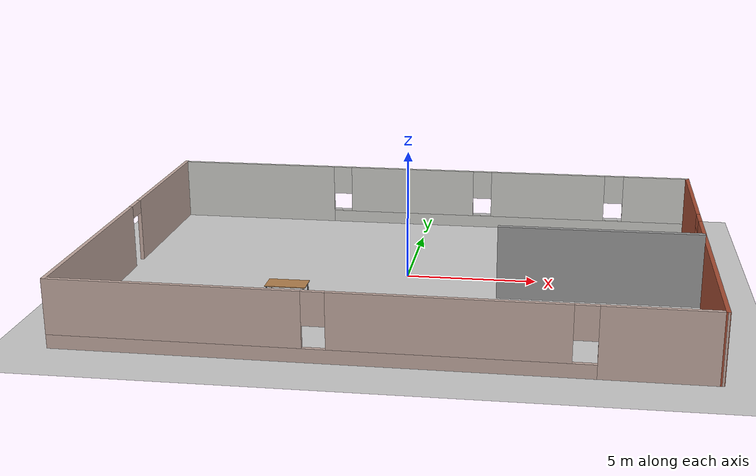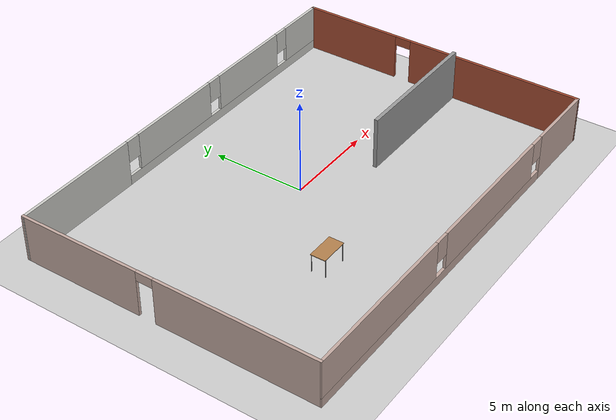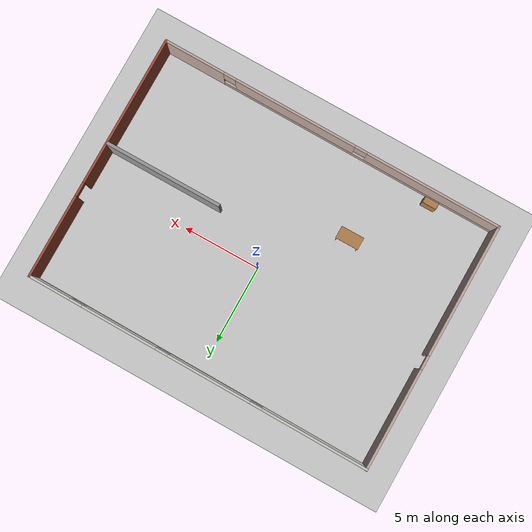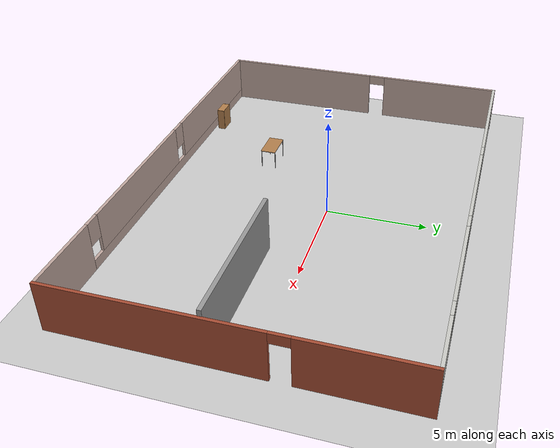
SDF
<sdf version="1.7">
 <world name="default">
  <light name="sun" type="directional">
   <pose>0 0 10 0 -0 0</pose>
   <diffuse>0.8 0.8 0.8 1</diffuse>
   <specular>0.2 0.2 0.2 1</specular>
   <attenuation>
    <range>1000</range>
    <constant>0.9</constant>
    <linear>0.01</linear>
    <quadratic>0.001</quadratic>
   </attenuation>
   <direction>-0.5 0.1 -0.9</direction>
   <spot><inner_angle>0</inner_angle><outer_angle>0</outer_angle><falloff>0</falloff></spot>
  </light>
  <model name="ground_plane">
   <static>1</static>
   <link name="link">
    <collision name="collision">
     <geometry><plane><normal>0 0 1</normal><size>100 100</size></plane></geometry>
     <surface>
      <contact><collide_bitmask>65535</collide_bitmask></contact>
      <friction><ode><mu>100</mu><mu2>50</mu2></ode></friction>
     </surface>
    </collision>
    <visual name="visual">
     <cast_shadows>0</cast_shadows>
     <geometry><plane><normal>0 0 1</normal><size>100 100</size></plane></geometry>
     <material>
      <script><uri>file://media/materials/scripts/gazebo.material</uri><name>Gazebo/Grey</name></script>
     </material>
    </visual>
   </link>
  </model>
  <gravity>0 0 -9.8</gravity>
  <magnetic_field>6e-06 2.3e-05 -4.2e-05</magnetic_field>
  <atmosphere type="adiabatic"/>
  <physics type="ode">
   <max_step_size>0.001</max_step_size>
   <real_time_factor>1</real_time_factor>
   <real_time_update_rate>1000</real_time_update_rate>
  </physics>
  <scene><ambient>0.4 0.4 0.4 1</ambient><background>0.7 0.7 0.7 1</background><shadows>1</shadows></scene>
  <spherical_coordinates>
   <surface_model>EARTH_WGS84</surface_model>
   <latitude_deg>0</latitude_deg>
   <longitude_deg>0</longitude_deg>
   <elevation>0</elevation>
   <heading_deg>0</heading_deg>
  </spherical_coordinates>
  <model name="my_building">
   <pose>0.045723 -0.900146 0 0 -0 0</pose>
   <link name="Wall_0">
    <pose>-11.1115 0.070166 0 0 -0 1.5708</pose>
    <visual name="Wall_0_Visual_0">
     <pose>-3.7263 0 1.25 0 -0 0</pose>
     <geometry><box><size>8.54739 0.15 2.5</size></box></geometry>
     <material>
      <script><uri>file://media/materials/scripts/gazebo.material</uri><name>Gazebo/Grey</name></script>
      <ambient>0.760784 0.662745 0.627451 1</ambient>
     </material>
     <meta><layer>0</layer></meta>
    </visual>
    <collision name="Wall_0_Collision_0">
     <geometry><box><size>8.54739 0.15 2.5</size></box></geometry>
     <pose>-3.7263 0 1.25 0 -0 0</pose>
    </collision>
    <visual name="Wall_0_Visual_1">
     <pose>4.7237 0 1.25 0 -0 0</pose>
     <geometry><box><size>6.55261 0.15 2.5</size></box></geometry>
     <material>
      <script><uri>file://media/materials/scripts/gazebo.material</uri><name>Gazebo/Grey</name></script>
      <ambient>0.760784 0.662745 0.627451 1</ambient>
     </material>
     <meta><layer>0</layer></meta>
    </visual>
    <collision name="Wall_0_Collision_1">
     <geometry><box><size>6.55261 0.15 2.5</size></box></geometry>
     <pose>4.7237 0 1.25 0 -0 0</pose>
    </collision>
    <visual name="Wall_0_Visual_2">
     <pose>0.997393 0 2.25 0 -0 0</pose>
     <geometry><box><size>0.9 0.15 0.5</size></box></geometry>
     <material>
      <script><uri>file://media/materials/scripts/gazebo.material</uri><name>Gazebo/Grey</name></script>
      <ambient>0.760784 0.662745 0.627451 1</ambient>
     </material>
     <meta><layer>0</layer></meta>
    </visual>
    <collision name="Wall_0_Collision_2">
     <geometry><box><size>0.9 0.15 0.5</size></box></geometry>
     <pose>0.997393 0 2.25 0 -0 0</pose>
    </collision>
   </link>
   <link name="Wall_1">
    <pose>-0.008537 7.91646 0 0 -0 -0.005513</pose>
    <visual name="Wall_1_Visual_0">
     <pose>-7.73425 0 1.25 0 -0 0</pose>
     <geometry><box><size>6.88777 0.15 2.5</size></box></geometry>
     <material>
      <script><uri>file://media/materials/scripts/gazebo.material</uri><name>Gazebo/CeilingTiled</name></script>
      <ambient>0.760784 0.662745 0.627451 1</ambient>
     </material>
     <meta><layer>0</layer></meta>
    </visual>
    <collision name="Wall_1_Collision_0">
     <geometry><box><size>6.88777 0.15 2.5</size></box></geometry>
     <pose>-7.73425 0 1.25 0 -0 0</pose>
    </collision>
    <visual name="Wall_1_Visual_1">
     <pose>3.44388 0 0.25 0 -0 0</pose>
     <geometry><box><size>15.4685 0.15 0.5</size></box></geometry>
     <material>
      <script><uri>file://media/materials/scripts/gazebo.material</uri><name>Gazebo/CeilingTiled</name></script>
      <ambient>0.760784 0.662745 0.627451 1</ambient>
     </material>
     <meta><layer>0</layer></meta>
    </visual>
    <collision name="Wall_1_Collision_1">
     <geometry><box><size>15.4685 0.15 0.5</size></box></geometry>
     <pose>3.44388 0 0.25 0 -0 0</pose>
    </collision>
    <visual name="Wall_1_Visual_2">
     <pose>-0.779998 0 1.5 0 -0 0</pose>
     <geometry><box><size>5.42074 0.15 2</size></box></geometry>
     <material>
      <script><uri>file://media/materials/scripts/gazebo.material</uri><name>Gazebo/CeilingTiled</name></script>
      <ambient>0.760784 0.662745 0.627451 1</ambient>
     </material>
     <meta><layer>0</layer></meta>
    </visual>
    <collision name="Wall_1_Collision_2">
     <geometry><box><size>5.42074 0.15 2</size></box></geometry>
     <pose>-0.779998 0 1.5 0 -0 0</pose>
    </collision>
    <visual name="Wall_1_Visual_3">
     <pose>5.18019 0 1.5 0 -0 0</pose>
     <geometry><box><size>4.89963 0.15 2</size></box></geometry>
     <material>
      <script><uri>file://media/materials/scripts/gazebo.material</uri><name>Gazebo/CeilingTiled</name></script>
      <ambient>0.760784 0.662745 0.627451 1</ambient>
     </material>
     <meta><layer>0</layer></meta>
    </visual>
    <collision name="Wall_1_Collision_3">
     <geometry><box><size>4.89963 0.15 2</size></box></geometry>
     <pose>5.18019 0 1.5 0 -0 0</pose>
    </collision>
    <visual name="Wall_1_Visual_4">
     <pose>9.80407 0 1.5 0 -0 0</pose>
     <geometry><box><size>2.74813 0.15 2</size></box></geometry>
     <material>
      <script><uri>file://media/materials/scripts/gazebo.material</uri><name>Gazebo/CeilingTiled</name></script>
      <ambient>0.760784 0.662745 0.627451 1</ambient>
     </material>
     <meta><layer>0</layer></meta>
    </visual>
    <collision name="Wall_1_Collision_4">
     <geometry><box><size>2.74813 0.15 2</size></box></geometry>
     <pose>9.80407 0 1.5 0 -0 0</pose>
    </collision>
    <visual name="Wall_1_Visual_5">
     <pose>-3.89037 0 1.9 0 -0 0</pose>
     <geometry><box><size>0.8 0.15 1.2</size></box></geometry>
     <material>
      <script><uri>file://media/materials/scripts/gazebo.material</uri><name>Gazebo/CeilingTiled</name></script>
      <ambient>0.760784 0.662745 0.627451 1</ambient>
     </material>
     <meta><layer>0</layer></meta>
    </visual>
    <collision name="Wall_1_Collision_5">
     <geometry><box><size>0.8 0.15 1.2</size></box></geometry>
     <pose>-3.89037 0 1.9 0 -0 0</pose>
    </collision>
    <visual name="Wall_1_Visual_6">
     <pose>2.33037 0 1.9 0 -0 0</pose>
     <geometry><box><size>0.8 0.15 1.2</size></box></geometry>
     <material>
      <script><uri>file://media/materials/scripts/gazebo.material</uri><name>Gazebo/CeilingTiled</name></script>
      <ambient>0.760784 0.662745 0.627451 1</ambient>
     </material>
     <meta><layer>0</layer></meta>
    </visual>
    <collision name="Wall_1_Collision_6">
     <geometry><box><size>0.8 0.15 1.2</size></box></geometry>
     <pose>2.33037 0 1.9 0 -0 0</pose>
    </collision>
    <visual name="Wall_1_Visual_7">
     <pose>8.03 0 1.9 0 -0 0</pose>
     <geometry><box><size>0.8 0.15 1.2</size></box></geometry>
     <material>
      <script><uri>file://media/materials/scripts/gazebo.material</uri><name>Gazebo/CeilingTiled</name></script>
      <ambient>0.760784 0.662745 0.627451 1</ambient>
     </material>
     <meta><layer>0</layer></meta>
    </visual>
    <collision name="Wall_1_Collision_7">
     <geometry><box><size>0.8 0.15 1.2</size></box></geometry>
     <pose>8.03 0 1.9 0 -0 0</pose>
    </collision>
   </link>
   <link name="Wall_2">
    <pose>11.1119 -0.069755 0 0 -0 -1.5708</pose>
    <visual name="Wall_2_Visual_0">
     <pose>-5.30087 0 1.25 0 -0 0</pose>
     <geometry><box><size>5.39826 0.15 2.5</size></box></geometry>
     <material>
      <script><uri>file://media/materials/scripts/gazebo.material</uri><name>Gazebo/Bricks</name></script>
      <ambient>0.760784 0.662745 0.627451 1</ambient>
     </material>
     <meta><layer>0</layer></meta>
    </visual>
    <collision name="Wall_2_Collision_0">
     <geometry><box><size>5.39826 0.15 2.5</size></box></geometry>
     <pose>-5.30087 0 1.25 0 -0 0</pose>
    </collision>
    <visual name="Wall_2_Visual_1">
     <pose>3.14913 0 1.25 0 -0 0</pose>
     <geometry><box><size>9.70174 0.15 2.5</size></box></geometry>
     <material>
      <script><uri>file://media/materials/scripts/gazebo.material</uri><name>Gazebo/Bricks</name></script>
      <ambient>0.760784 0.662745 0.627451 1</ambient>
     </material>
     <meta><layer>0</layer></meta>
    </visual>
    <collision name="Wall_2_Collision_1">
     <geometry><box><size>9.70174 0.15 2.5</size></box></geometry>
     <pose>3.14913 0 1.25 0 -0 0</pose>
    </collision>
    <visual name="Wall_2_Visual_2">
     <pose>-2.15174 0 2.25 0 -0 0</pose>
     <geometry><box><size>0.9 0.15 0.5</size></box></geometry>
     <material>
      <script><uri>file://media/materials/scripts/gazebo.material</uri><name>Gazebo/Bricks</name></script>
      <ambient>0.760784 0.662745 0.627451 1</ambient>
     </material>
     <meta><layer>0</layer></meta>
    </visual>
    <collision name="Wall_2_Collision_2">
     <geometry><box><size>0.9 0.15 0.5</size></box></geometry>
     <pose>-2.15174 0 2.25 0 -0 0</pose>
    </collision>
   </link>
   <link name="Wall_3">
    <pose>-0.008537 -7.93354 0 0 -0 3.13608</pose>
    <visual name="Wall_3_Visual_0">
     <pose>-9.19339 0 1.25 0 -0 0</pose>
     <geometry><box><size>3.96948 0.15 2.5</size></box></geometry>
     <material>
      <script><uri>file://media/materials/scripts/gazebo.material</uri><name>Gazebo/Grey</name></script>
      <ambient>0.760784 0.662745 0.627451 1</ambient>
     </material>
     <meta><layer>0</layer></meta>
    </visual>
    <collision name="Wall_3_Collision_0">
     <geometry><box><size>3.96948 0.15 2.5</size></box></geometry>
     <pose>-9.19339 0 1.25 0 -0 0</pose>
    </collision>
    <visual name="Wall_3_Visual_1">
     <pose>1.98474 0 0.25 0 -0 0</pose>
     <geometry><box><size>18.3868 0.15 0.5</size></box></geometry>
     <material>
      <script><uri>file://media/materials/scripts/gazebo.material</uri><name>Gazebo/Grey</name></script>
      <ambient>0.760784 0.662745 0.627451 1</ambient>
     </material>
     <meta><layer>0</layer></meta>
    </visual>
    <collision name="Wall_3_Collision_1">
     <geometry><box><size>18.3868 0.15 0.5</size></box></geometry>
     <pose>1.98474 0 0.25 0 -0 0</pose>
    </collision>
    <visual name="Wall_3_Visual_2">
     <pose>-2.4118 0 1.5 0 -0 0</pose>
     <geometry><box><size>7.99371 0.15 2</size></box></geometry>
     <material>
      <script><uri>file://media/materials/scripts/gazebo.material</uri><name>Gazebo/Grey</name></script>
      <ambient>0.760784 0.662745 0.627451 1</ambient>
     </material>
     <meta><layer>0</layer></meta>
    </visual>
    <collision name="Wall_3_Collision_2">
     <geometry><box><size>7.99371 0.15 2</size></box></geometry>
     <pose>-2.4118 0 1.5 0 -0 0</pose>
    </collision>
    <visual name="Wall_3_Visual_3">
     <pose>6.7816 0 1.5 0 -0 0</pose>
     <geometry><box><size>8.79307 0.15 2</size></box></geometry>
     <material>
      <script><uri>file://media/materials/scripts/gazebo.material</uri><name>Gazebo/Grey</name></script>
      <ambient>0.760784 0.662745 0.627451 1</ambient>
     </material>
     <meta><layer>0</layer></meta>
    </visual>
    <collision name="Wall_3_Collision_3">
     <geometry><box><size>8.79307 0.15 2</size></box></geometry>
     <pose>6.7816 0 1.5 0 -0 0</pose>
    </collision>
    <visual name="Wall_3_Visual_4">
     <pose>-6.80865 0 1.9 0 -0 0</pose>
     <geometry><box><size>0.8 0.15 1.2</size></box></geometry>
     <material>
      <script><uri>file://media/materials/scripts/gazebo.material</uri><name>Gazebo/Grey</name></script>
      <ambient>0.760784 0.662745 0.627451 1</ambient>
     </material>
     <meta><layer>0</layer></meta>
    </visual>
    <collision name="Wall_3_Collision_4">
     <geometry><box><size>0.8 0.15 1.2</size></box></geometry>
     <pose>-6.80865 0 1.9 0 -0 0</pose>
    </collision>
    <visual name="Wall_3_Visual_5">
     <pose>1.98506 0 1.9 0 -0 0</pose>
     <geometry><box><size>0.8 0.15 1.2</size></box></geometry>
     <material>
      <script><uri>file://media/materials/scripts/gazebo.material</uri><name>Gazebo/Grey</name></script>
      <ambient>0.760784 0.662745 0.627451 1</ambient>
     </material>
     <meta><layer>0</layer></meta>
    </visual>
    <collision name="Wall_3_Collision_5">
     <geometry><box><size>0.8 0.15 1.2</size></box></geometry>
     <pose>1.98506 0 1.9 0 -0 0</pose>
    </collision>
   </link>
   <static>1</static>
  </model>
  <model name="table">
   <static>1</static>
   <link name="link">
    <collision name="surface">
     <pose>0 0 1 0 -0 0</pose>
     <geometry><box><size>1.5 0.8 0.03</size></box></geometry>
     <surface><friction><ode><mu>0.6</mu><mu2>0.6</mu2></ode></friction></surface>
    </collision>
    <visual name="visual1">
     <pose>0 0 1 0 -0 0</pose>
     <geometry><box><size>1.5 0.8 0.03</size></box></geometry>
     <material>
      <script><uri>file://media/materials/scripts/gazebo.material</uri><name>Gazebo/Wood</name></script>
     </material>
    </visual>
    <collision name="front_left_leg">
     <pose>0.68 0.38 0.5 0 -0 0</pose>
     <geometry><cylinder><radius>0.02</radius><length>1</length></cylinder></geometry>
    </collision>
    <visual name="front_left_leg">
     <pose>0.68 0.38 0.5 0 -0 0</pose>
     <geometry><cylinder><radius>0.02</radius><length>1</length></cylinder></geometry>
     <material>
      <script><uri>file://media/materials/scripts/gazebo.material</uri><name>Gazebo/Grey</name></script>
     </material>
    </visual>
    <collision name="front_right_leg">
     <pose>0.68 -0.38 0.5 0 -0 0</pose>
     <geometry><cylinder><radius>0.02</radius><length>1</length></cylinder></geometry>
    </collision>
    <visual name="front_right_leg">
     <pose>0.68 -0.38 0.5 0 -0 0</pose>
     <geometry><cylinder><radius>0.02</radius><length>1</length></cylinder></geometry>
     <material>
      <script><uri>file://media/materials/scripts/gazebo.material</uri><name>Gazebo/Grey</name></script>
     </material>
    </visual>
    <collision name="back_right_leg">
     <pose>-0.68 -0.38 0.5 0 -0 0</pose>
     <geometry><cylinder><radius>0.02</radius><length>1</length></cylinder></geometry>
    </collision>
    <visual name="back_right_leg">
     <pose>-0.68 -0.38 0.5 0 -0 0</pose>
     <geometry><cylinder><radius>0.02</radius><length>1</length></cylinder></geometry>
     <material>
      <script><uri>file://media/materials/scripts/gazebo.material</uri><name>Gazebo/Grey</name></script>
     </material>
    </visual>
    <collision name="back_left_leg">
     <pose>-0.68 0.38 0.5 0 -0 0</pose>
     <geometry><cylinder><radius>0.02</radius><length>1</length></cylinder></geometry>
    </collision>
    <visual name="back_left_leg">
     <pose>-0.68 0.38 0.5 0 -0 0</pose>
     <geometry><cylinder><radius>0.02</radius><length>1</length></cylinder></geometry>
     <material>
      <script><uri>file://media/materials/scripts/gazebo.material</uri><name>Gazebo/Grey</name></script>
     </material>
    </visual>
   </link>
   <pose>-3.88134 -4.17942 0 0 -0 0</pose>
  </model>
  <model name="bookshelf">
   <static>1</static>
   <link name="link">
    <inertial><mass>1</mass></inertial>
    <collision name="back">
     <pose>0 0.005 0.6 0 -0 0</pose>
     <geometry><box><size>0.9 0.01 1.2</size></box></geometry>
    </collision>
    <visual name="visual1">
     <pose>0 0.005 0.6 0 -0 0</pose>
     <geometry><box><size>0.9 0.01 1.2</size></box></geometry>
     <material>
      <script><uri>file://media/materials/scripts/gazebo.material</uri><name>Gazebo/Wood</name></script>
     </material>
    </visual>
    <collision name="left_side">
     <pose>0.45 -0.195 0.6 0 -0 0</pose>
     <geometry><box><size>0.02 0.4 1.2</size></box></geometry>
    </collision>
    <visual name="visual2">
     <pose>0.45 -0.195 0.6 0 -0 0</pose>
     <geometry><box><size>0.02 0.4 1.2</size></box></geometry>
     <material>
      <script><uri>file://media/materials/scripts/gazebo.material</uri><name>Gazebo/Wood</name></script>
     </material>
    </visual>
    <collision name="right_side">
     <pose>-0.45 -0.195 0.6 0 -0 0</pose>
     <geometry><box><size>0.02 0.4 1.2</size></box></geometry>
    </collision>
    <visual name="visual3">
     <pose>-0.45 -0.195 0.6 0 -0 0</pose>
     <geometry><box><size>0.02 0.4 1.2</size></box></geometry>
     <material>
      <script><uri>file://media/materials/scripts/gazebo.material</uri><name>Gazebo/Wood</name></script>
     </material>
    </visual>
    <collision name="bottom">
     <pose>0 -0.195 0.03 0 -0 0</pose>
     <geometry><box><size>0.88 0.4 0.06</size></box></geometry>
    </collision>
    <visual name="visual4">
     <pose>0 -0.195 0.03 0 -0 0</pose>
     <geometry><box><size>0.88 0.4 0.06</size></box></geometry>
     <material>
      <script><uri>file://media/materials/scripts/gazebo.material</uri><name>Gazebo/Wood</name></script>
     </material>
    </visual>
    <collision name="top">
     <pose>0 -0.195 1.19 0 -0 0</pose>
     <geometry><box><size>0.88 0.4 0.02</size></box></geometry>
    </collision>
    <visual name="visual5">
     <pose>0 -0.195 1.19 0 -0 0</pose>
     <geometry><box><size>0.88 0.4 0.02</size></box></geometry>
     <material>
      <script><uri>file://media/materials/scripts/gazebo.material</uri><name>Gazebo/Wood</name></script>
     </material>
    </visual>
    <collision name="low_shelf">
     <pose>0 -0.195 0.43 0 -0 0</pose>
     <geometry><box><size>0.88 0.4 0.02</size></box></geometry>
    </collision>
    <visual name="visual6">
     <pose>0 -0.195 0.43 0 -0 0</pose>
     <geometry><box><size>0.88 0.4 0.02</size></box></geometry>
     <material>
      <script><uri>file://media/materials/scripts/gazebo.material</uri><name>Gazebo/Wood</name></script>
     </material>
    </visual>
    <collision name="high_shelf">
     <pose>0 -0.195 0.8 0 -0 0</pose>
     <geometry><box><size>0.88 0.4 0.02</size></box></geometry>
    </collision>
    <visual name="visual7">
     <pose>0 -0.195 0.8 0 -0 0</pose>
     <geometry><box><size>0.88 0.4 0.02</size></box></geometry>
     <material>
      <script><uri>file://media/materials/scripts/gazebo.material</uri><name>Gazebo/Wood</name></script>
     </material>
    </visual>
   </link>
   <pose>-7.04127 -8.11957 0 0 -0 0</pose>
  </model>
  <model name="grey_wall">
   <static>1</static>
   <link name="link">
    <pose>0 0 1.4 0 -0 0</pose>
    <collision name="collision"><geometry><box><size>7.5 0.2 2.8</size></box></geometry></collision>
    <visual name="visual">
     <cast_shadows>0</cast_shadows>
     <geometry><box><size>7.5 0.2 2.8</size></box></geometry>
     <material>
      <script>
       <uri>model://grey_wall/materials/scripts</uri>
       <uri>model://grey_wall/materials/textures</uri>
       <name>vrc/grey_wall</name>
      </script>
     </material>
    </visual>
   </link>
   <pose>7.34384 -1.92146 0 0 -0 0</pose>
  </model>
 </world>
</sdf>
